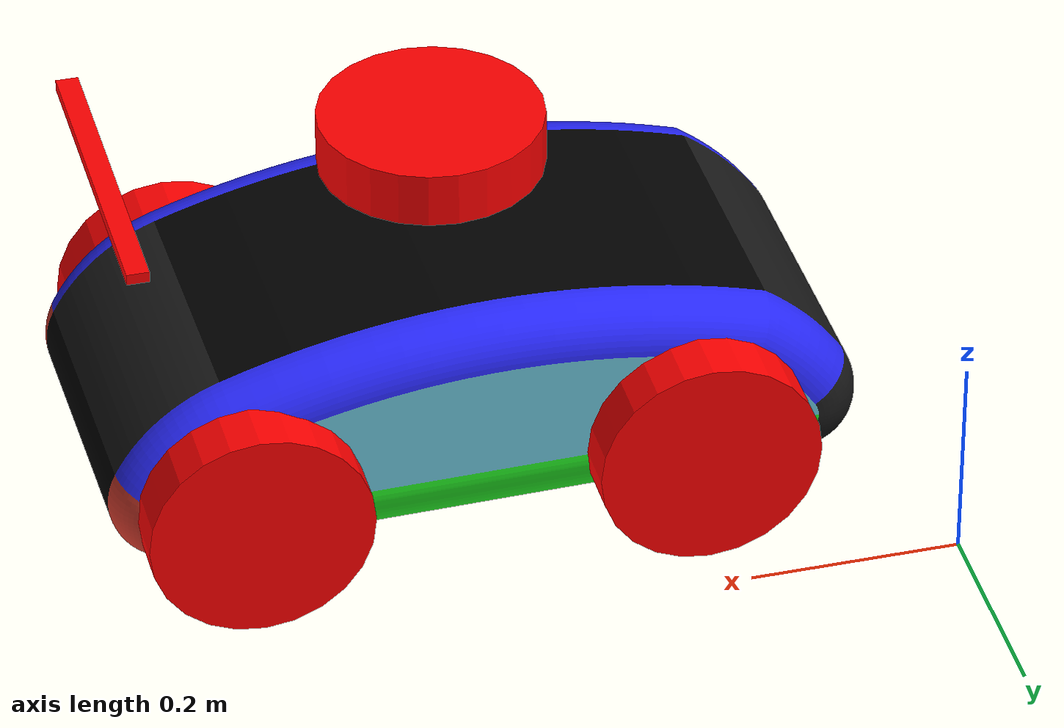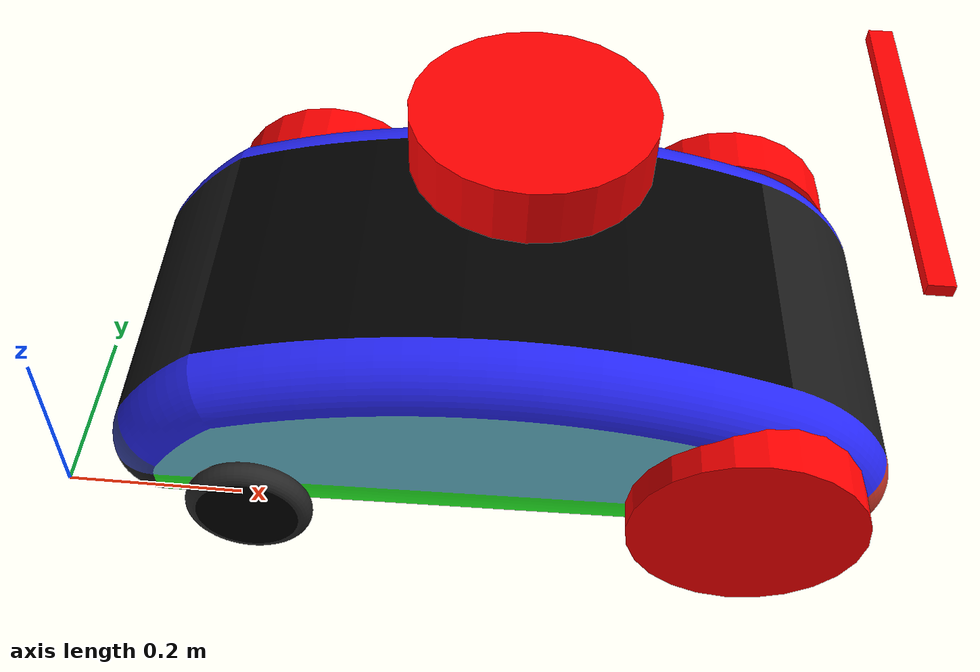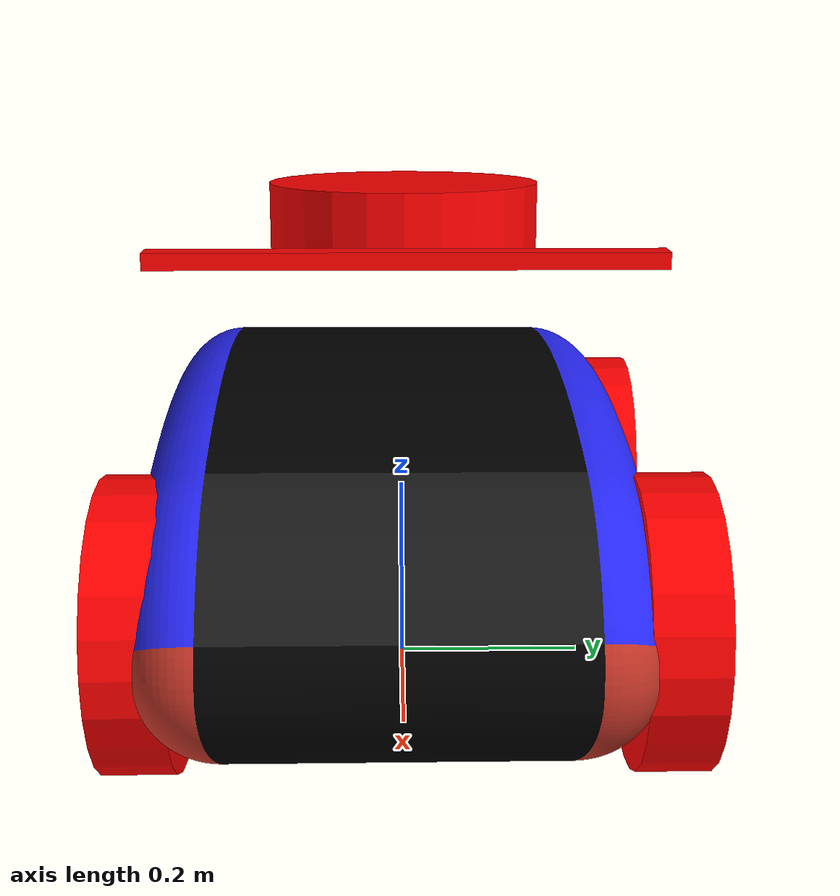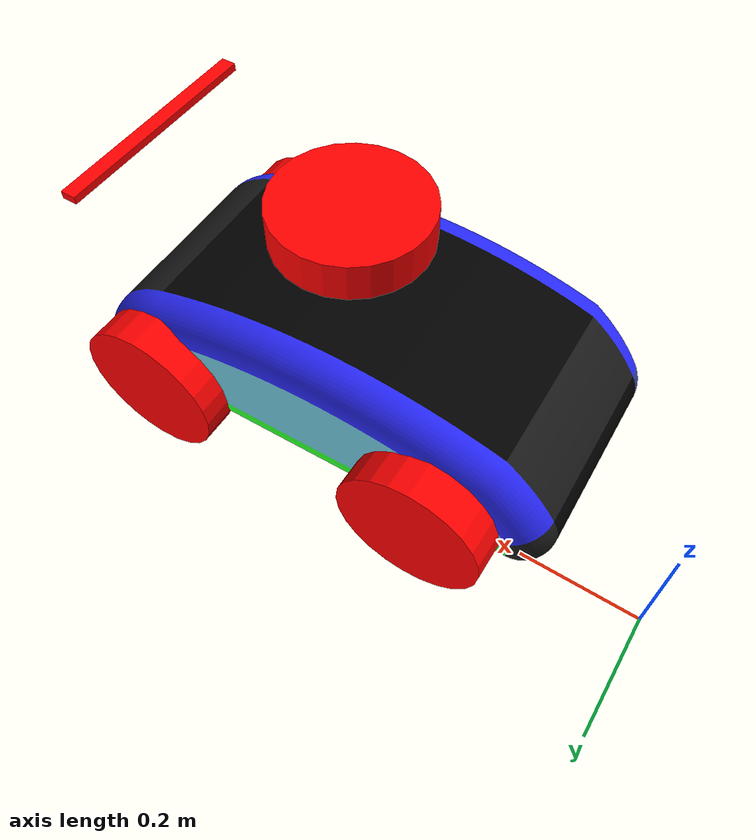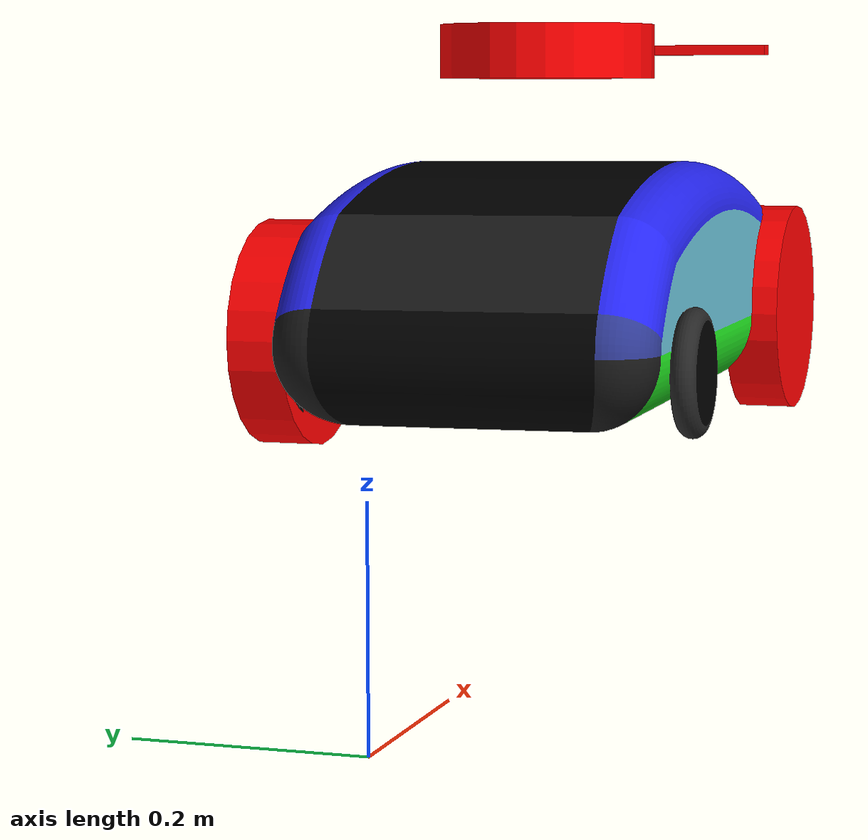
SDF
<?xml version="1.0" ?>
<sdf version="1.8">

        <model name='Joker' canonical_link='base_link'>
            <link name='base_link'>
                <pose relative_to='__model__'>0.5 0 0.4 0 0 0</pose>
                <inertial>
                    <inertia>
                        <ixx>0.001</ixx>
                        <ixy>0.000</ixy>
                        <ixz>0.000</ixz>
                        <iyy>0.001</iyy>
                        <iyz>0.000</iyz>
                        <izz>0.001</izz>
                    </inertia>
                    <mass>0.05</mass>
                </inertial>
                <visual name='visual'>
                    <pose >0 -0.005 -0.17 0 0 0.02</pose>
                    <geometry>
                        <mesh>
                            <uri>package://car_mode/meshes/Joker.dae</uri>
                        </mesh>
                    </geometry>
                </visual>
                <collision name='collision'> <!--todo: describe why we need the collision-->
                    <geometry>
                        <box>
                            <size>0.6 0.3 0.25</size>
                        </box>
                    </geometry>
                </collision>
            </link>

            <link name='base_camera'>
                <pose relative_to="base_link">0.29 0 0.155 0 0 0</pose>
                <sensor name="camera" type="camera">
                    <pose relative_to='base_camera'>0.01 0 0 0 0 0</pose>
                    <always_on>true</always_on>
                    <visualize>true</visualize>
                    <update_rate>30</update_rate>
                    <topic>camera/image_raw</topic>
                    <camera name="intel_realsense_r200">
                    <horizontal_fov>1.02974</horizontal_fov>
                    <gz_frame_id>base_camera</gz_frame_id>
                    <image>
                        <width>1920</width>
                        <height>1080</height>
                        <format>R8G8B8</format>
                    </image>
                    <clip>
                        <near>0.02</near>
                        <far>300</far>
                    </clip>
                    <noise>
                        <type>gaussian</type>
                        <mean>0.0</mean>
                        <stddev>0.007</stddev>
                    </noise>
                    </camera>
                </sensor>
                <inertial>
                    <mass>0.2</mass>
                    <inertia>
                        <ixx>0.03</ixx>
                        <ixy>0</ixy>
                        <ixz>0</ixz>
                        <iyy>0.03</iyy>
                        <iyz>0</iyz>
                        <izz>0.003</izz>
                    </inertia>
                </inertial>
                <visual name='visual'>
                     <visibility_flags>0</visibility_flags>
                    <geometry>
                        <box>
                            <size>0.02 0.3 0.01</size>
                        </box>
                    </geometry>
                    <material>
                        <ambient>1.0 0.0 0.0 1</ambient>
                        <diffuse>1.0 0.0 0.0 1</diffuse>
                        <specular>1.0 0.0 0.0 1</specular>
                    </material>
                </visual>
                <collision name='collision'>
                    <geometry>
                        <box>
                            <size>0.02 0.3 0.01</size>
                        </box>
                    </geometry>
                </collision>
            </link>

            <link name='base_scan'>
                <pose relative_to="base_link">0 0 0.15 0 0 0</pose>
                <sensor name="hls_lfcd_lds" type="gpu_lidar">
                    <pose relative_to="base_scan">0 0 0.05 0 0 0</pose>
                    <topic>/scan</topic>
                    <update_rate>10</update_rate>
                    <gz_frame_id>base_scan</gz_frame_id>
                    <ray>
                    <scan>
                        <horizontal>
                        <samples>360</samples>
                        <resolution>1.000000</resolution>
                        <min_angle>0.000000</min_angle>
                        <max_angle>6.280000</max_angle>
                        </horizontal>
                    </scan>
                    <range>
                        <min>0.00001</min>
                        <max>20.0</max>
                        <resolution>0.015000</resolution>
                    </range>
                    <noise>
                        <type>gaussian</type>
                        <mean>0.0</mean>
                        <stddev>0.01</stddev>
                    </noise>
                    </ray>
                    <always_on>1</always_on>
                    <visualize>true</visualize>
                </sensor>
                <inertial>
                    <mass>0.2</mass>
                    <inertia>
                        <ixx>0.086667</ixx>
                        <ixy>0</ixy>
                        <ixz>0</ixz>
                        <iyy>0.086667</iyy>
                        <iyz>0</iyz>
                        <izz>0.16</izz>
                    </inertia>
                </inertial>
                <visual name='visual'>
                    <visibility_flags>0</visibility_flags>
                    <geometry>
                        <cylinder>
                            <radius>0.1</radius>
                            <length>0.05</length>
                        </cylinder>
                    </geometry>
                    <material>
                        <ambient>1.0 0.0 0.0 1</ambient>
                        <diffuse>1.0 0.0 0.0 1</diffuse>
                        <specular>1.0 0.0 0.0 1</specular>
                    </material>
                </visual>
                <collision name='collision'>
                    <geometry>
                        <cylinder>
                            <radius>0.1</radius>
                            <length>0.05</length>
                        </cylinder>
                    </geometry>
                </collision>
            </link>

            <!--let's build the left wheel-->
            <link name='left_back_wheel'>
                <pose relative_to="base_link">-0.2 0.175 -0.1 -1.5707 0 0</pose> <!--angles are in radian-->
                <inertial>
                    <inertia>
                        <ixx>0.001</ixx>
                        <ixy>0.000</ixy>
                        <ixz>0.000</ixz>
                        <iyy>0.001</iyy>
                        <iyz>0.000</iyz>
                        <izz>0.001</izz>
                    </inertia>
                    <mass>0.01</mass>
                </inertial>
                <visual name='visual'>
                    <visibility_flags>0</visibility_flags>
                    <geometry>
                        <cylinder>
                            <radius>0.1</radius>
                            <length>0.05</length>
                        </cylinder>
                    </geometry>
                    <material>
                        <ambient>1.0 0.0 0.0 1</ambient>
                        <diffuse>1.0 0.0 0.0 1</diffuse>
                        <specular>1.0 0.0 0.0 1</specular>
                    </material>
                </visual>
                <collision name='collision'>
                    <geometry>
                        <cylinder>
                            <radius>0.1</radius>
                            <length>0.05</length>
                        </cylinder>
                    </geometry>
                </collision>
            </link>

            <!--copy and paste for right wheel but change position -0.2 -0.175 -0.1-->
            <link name='right_back_wheel'>
                <pose relative_to="base_link">0 0 0 0 0 0</pose> <!--angles are in radian-->
                <inertial>
                    <inertia>
                        <ixx>0.001</ixx>
                        <ixy>0.000</ixy>
                        <ixz>0.000</ixz>
                        <iyy>0.001</iyy>
                        <iyz>0.000</iyz>
                        <izz>0.001</izz>
                    </inertia>
                    <mass>0.01</mass>
                </inertial>
                <visual name='visual'>
                    <visibility_flags>0</visibility_flags>
                    <geometry>
                        <cylinder>
                            <radius>0.1</radius>
                            <length>0.05</length>
                        </cylinder>
                    </geometry>
                    <material>
                        <ambient>1.0 0.0 0.0 1</ambient>
                        <diffuse>1.0 0.0 0.0 1</diffuse>
                        <specular>1.0 0.0 0.0 1</specular>
                    </material>
                </visual>
                <collision name='collision'>
                    <geometry>
                        <cylinder>
                            <radius>0.1</radius>
                            <length>0.05</length>
                        </cylinder>
                    </geometry>
                </collision>
            </link>

            <link name='left_front_wheel'>
                <pose relative_to="base_link">0.2 0.175 -0.1 -1.5707 0 0</pose> <!--angles are in radian-->
                <inertial>
                    <inertia>
                        <ixx>0.001</ixx>
                        <ixy>0.000</ixy>
                        <ixz>0.000</ixz>
                        <iyy>0.001</iyy>
                        <iyz>0.000</iyz>
                        <izz>0.001</izz>
                    </inertia>
                    <mass>0.01</mass>
                </inertial>
                <visual name='visual'>
                    <visibility_flags>0</visibility_flags>
                    <geometry>
                        <cylinder>
                            <radius>0.1</radius>
                            <length>0.05</length>
                        </cylinder>
                    </geometry>
                    <material>
                        <ambient>1.0 0.0 0.0 1</ambient>
                        <diffuse>1.0 0.0 0.0 1</diffuse>
                        <specular>1.0 0.0 0.0 1</specular>
                    </material>
                </visual>
                <collision name='collision'>
                    <geometry>
                        <cylinder>
                            <radius>0.1</radius>
                            <length>0.05</length>
                        </cylinder>
                    </geometry>
                </collision>
            </link>

            <link name='right_front_wheel'>
                <pose relative_to="base_link">0.2 -0.175 -0.1 -1.5707 0 0</pose> <!--angles are in radian-->
                <inertial>
                    <inertia>
                        <ixx>0.001</ixx>
                        <ixy>0.000</ixy>
                        <ixz>0.000</ixz>
                        <iyy>0.001</iyy>
                        <iyz>0.000</iyz>
                        <izz>0.001</izz>
                    </inertia>
                    <mass>0.01</mass>
                </inertial>
                <visual name='visual'>
                    <visibility_flags>0</visibility_flags>
                    <geometry>
                        <cylinder>
                            <radius>0.1</radius>
                            <length>0.05</length>
                        </cylinder>
                    </geometry>
                    <material>
                        <ambient>1.0 0.0 0.0 1</ambient>
                        <diffuse>1.0 0.0 0.0 1</diffuse>
                        <specular>1.0 0.0 0.0 1</specular>
                    </material>
                </visual>
                <collision name='collision'>
                    <geometry>
                        <cylinder>
                            <radius>0.1</radius>
                            <length>0.05</length>
                        </cylinder>
                    </geometry>
                </collision>
            </link>

            <joint name='camera_joint' type='fixed'>
                <pose relative_to='base_camera'/>
                <parent>base_link</parent>
                <child>base_camera</child>
                <axis>
                    <xyz>1 0 0</xyz>

                </axis>
            </joint>

            <joint name='scan_joint' type='fixed'>
                <pose relative_to='base_scan'/>
                <parent>base_link</parent>
                <child>base_scan</child>
                <axis>
                    <xyz >1 0 0</xyz>
                </axis>
            </joint>

            <!--connecting these links together using joints-->
            <joint name='left_back_joint' type='revolute'> <!--continous joint is not supported yet-->
                <pose relative_to='left_back_wheel'/>
                <parent>base_link</parent>
                <child>left_back_wheel</child>
                <axis>
                    <xyz >0 0 1</xyz> <!--can be defined as any frame or even arbitrary frames-->
                </axis>
            </joint>

            <joint name='right_back_joint' type='revolute'>
                <pose relative_to='right_back_wheel'/>
                <parent>base_link</parent>
                <child>right_back_wheel</child>
                <axis>
                    <xyz>0 1 0</xyz>
                </axis>
            </joint>

            <joint name='left_front_joint' type='revolute'> <!--continous joint is not supported yet-->
                <pose relative_to='left_front_wheel'/>
                <parent>base_link</parent>
                <child>left_front_wheel</child>
                <axis>
                    <xyz>0 0 1</xyz>
                </axis>
            </joint>

            <joint name='right_front_joint' type='revolute'>
                <pose relative_to='right_front_wheel'/>
                <parent>base_link</parent>
                <child>right_front_wheel</child>
                <axis>
                    <xyz>0 0 1</xyz>
                </axis>
            </joint>
            <plugin
                filename="gz-sim-diff-drive-system"
                name="gz::sim::systems::DiffDrive">
                <left_joint>left_front_joint</left_joint>
                <right_joint>right_front_joint</right_joint>
                <left_joint>left_back_joint</left_joint>
                <right_joint>right_back_joint</right_joint>
                <wheel_separation>0.35</wheel_separation>
                <wheel_radius>0.1</wheel_radius>
                <max_linear_acceleration>1</max_linear_acceleration>
                <min_linear_acceleration>-1</min_linear_acceleration>
                <max_angular_acceleration>5</max_angular_acceleration>
                <min_angular_acceleration>-5</min_angular_acceleration>
                <max_linear_velocity>0.46</max_linear_velocity>
                <min_linear_velocity>-0.46</min_linear_velocity>
                <max_angular_velocity>7.0</max_angular_velocity>
                <min_angular_velocity>-7.0</min_angular_velocity>
                <topic>cmd_vel</topic>
                <odom_topic>/odom</odom_topic>
                <tf_topic>/tf</tf_topic>
                <frame_id>odom</frame_id>
                <child_frame_id>base_link</child_frame_id>
                <odom_publish_frequency>30</odom_publish_frequency>
            </plugin>

            <plugin
                filename="gz-sim-joint-state-publisher-system"
                name="gz::sim::systems::JointStatePublisher">
                <topic>/joint_states</topic>
                <update_rate>30</update_rate>
            </plugin>
        </model>
</sdf>
